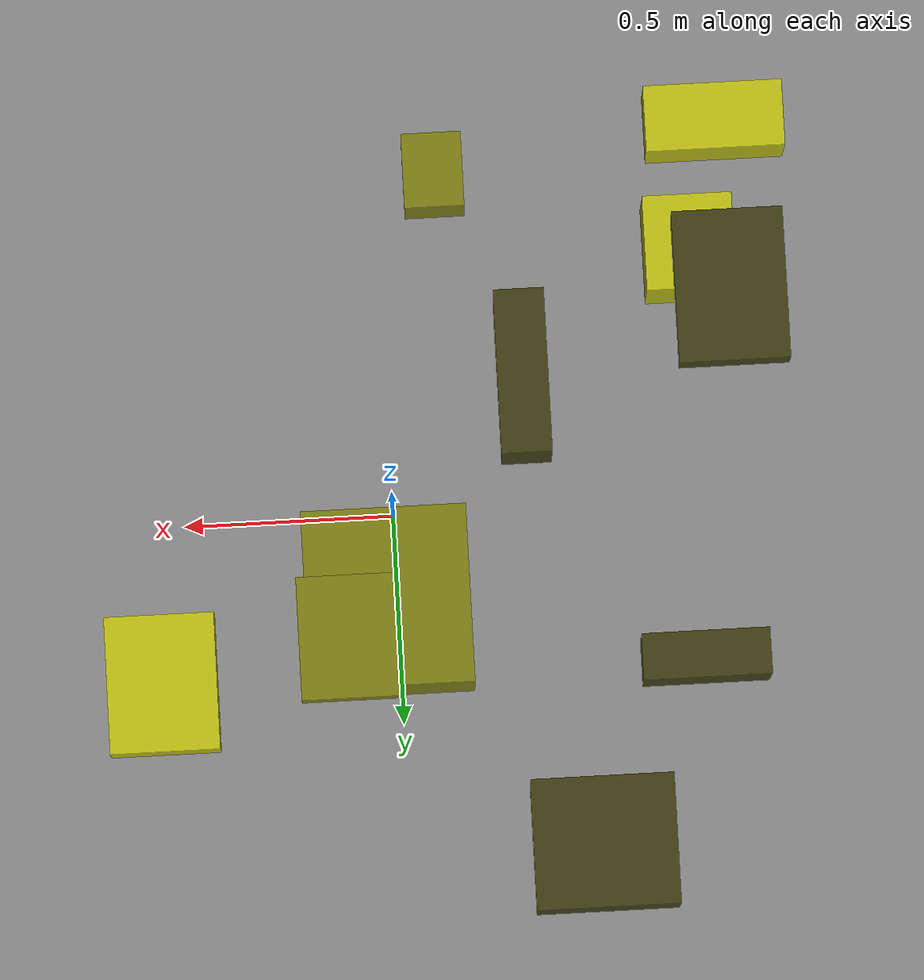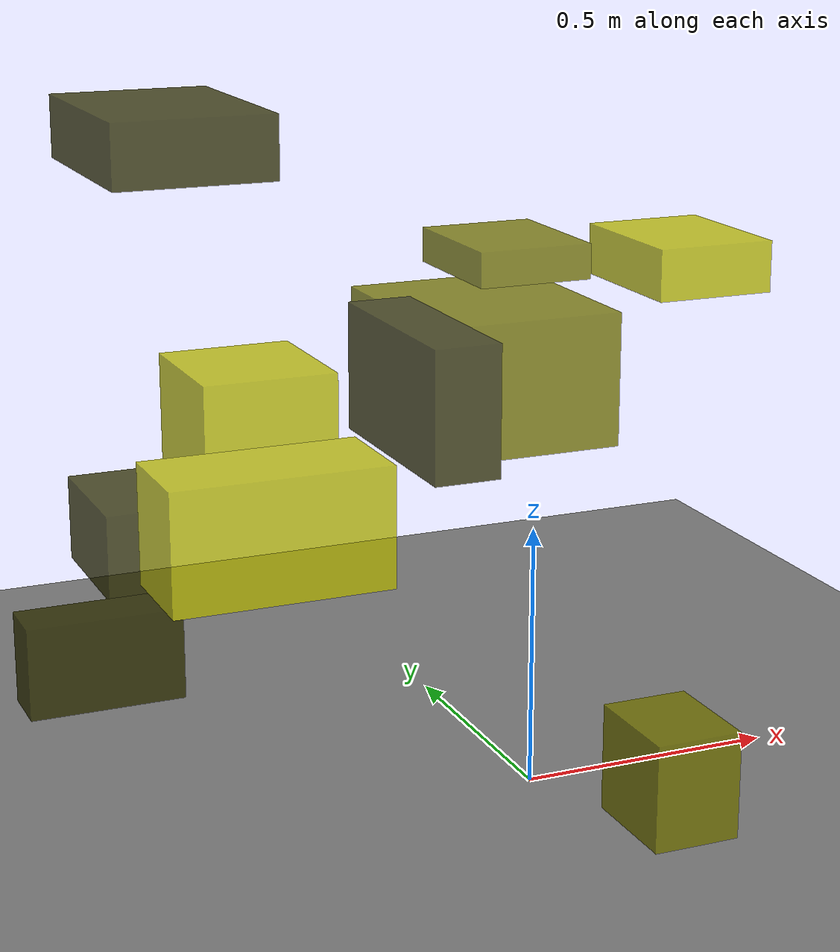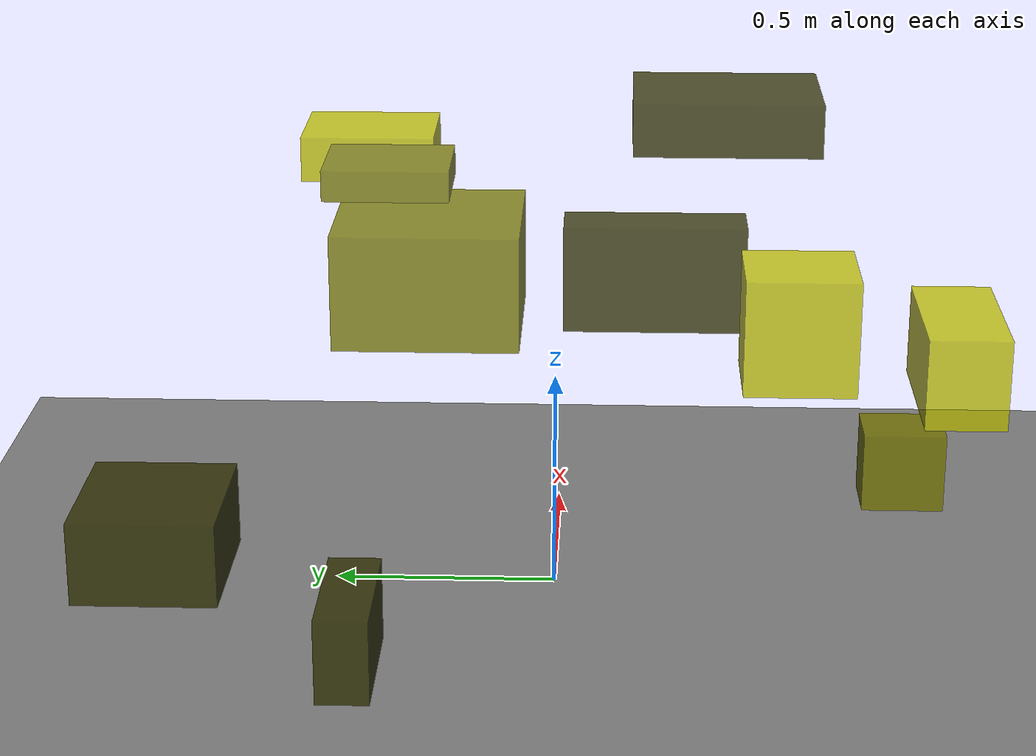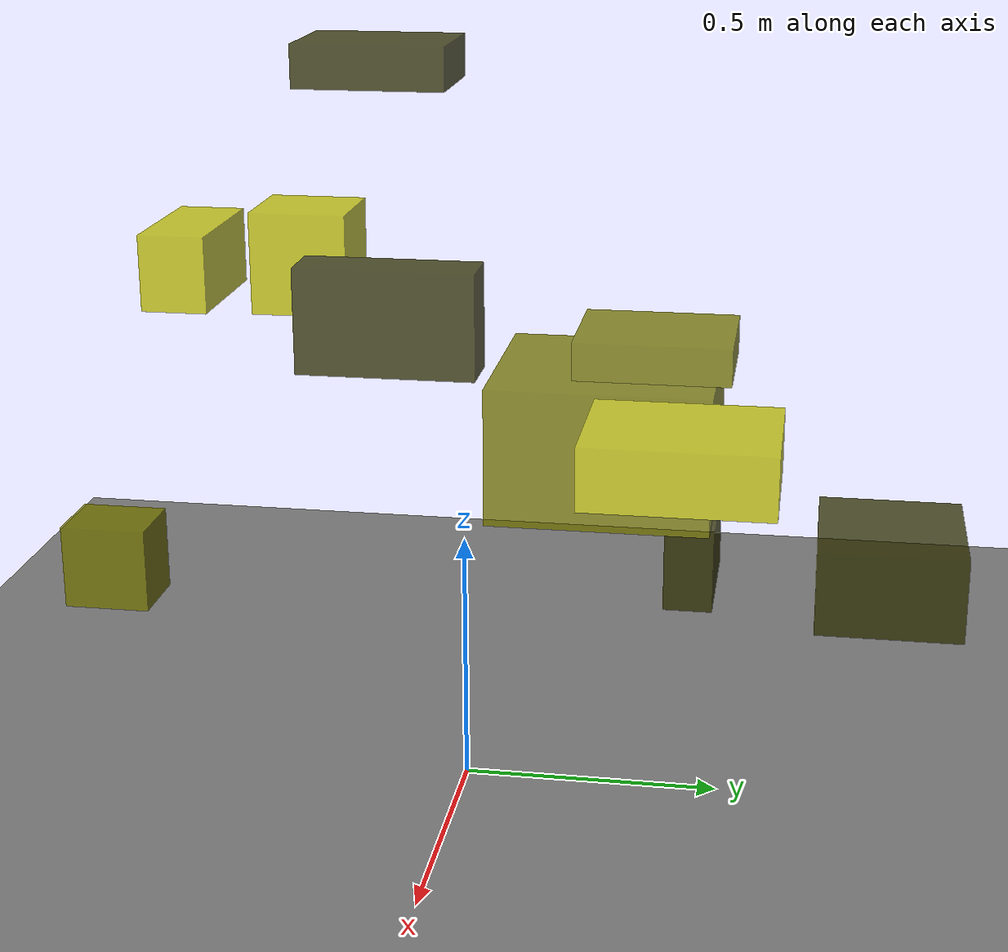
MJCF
<?xml version="1.0"?>
<mujoco model="obstacle_scene">
  <compiler angle="radian" coordinate="local"/>
  <option timestep="0.001" gravity="0 0 -9.81"/>

  <asset>
    <material name="obstacle_mat" rgba="0.8 0.8 0.0 0.8"/>
    <material name="ground_mat" rgba="0.5 0.5 0.5 1"/>
  </asset>

  <worldbody>
    <!-- Ground plane -->
    <geom name="ground" type="plane" size="3 3 0.1" material="ground_mat"/>

    <!-- Obstacles -->
    <body name="obstacle_0" pos="-0.778226 -0.327126 1.308308">
      <geom name="obs_0" type="box" size="0.123301 0.169553 0.048215" rgba="0.2 0.2 0.0 0.8"/>
    </body>
    <body name="obstacle_1" pos="-0.135227 -0.761909 0.362370">
      <geom name="obs_1" type="box" size="0.069997 0.087917 0.086476" rgba="0.5 0.5 0.0 0.8"/>
    </body>
    <body name="obstacle_2" pos="0.543241 0.454318 0.878854">
      <geom name="obs_2" type="box" size="0.124836 0.155808 0.052730" rgba="0.8 0.8 0.0 0.8"/>
    </body>
    <body name="obstacle_3" pos="-0.718969 0.397200 0.219603">
      <geom name="obs_3" type="box" size="0.150664 0.054791 0.090292" rgba="0.2 0.2 0.0 0.8"/>
    </body>
    <body name="obstacle_4" pos="0.022160 0.278762 0.743213">
      <geom name="obs_4" type="box" size="0.188660 0.203866 0.128564" rgba="0.5 0.5 0.0 0.8"/>
    </body>
    <body name="obstacle_5" pos="-0.705690 -0.481616 0.880235">
      <geom name="obs_5" type="box" size="0.101013 0.107955 0.114270" rgba="0.8 0.8 0.0 0.8"/>
    </body>
    <body name="obstacle_6" pos="-0.312134 -0.210668 0.850558">
      <geom name="obs_6" type="box" size="0.057150 0.187334 0.111662" rgba="0.2 0.2 0.0 0.8"/>
    </body>
    <body name="obstacle_7" pos="0.113498 0.374715 0.936234">
      <geom name="obs_7" type="box" size="0.114612 0.140032 0.034368" rgba="0.5 0.5 0.0 0.8"/>
    </body>
    <body name="obstacle_8" pos="-0.781193 -0.777078 0.843815">
      <geom name="obs_8" type="box" size="0.157945 0.075789 0.087582" rgba="0.8 0.8 0.0 0.8"/>
    </body>
    <body name="obstacle_9" pos="-0.454559 0.830608 0.307302">
      <geom name="obs_9" type="box" size="0.167635 0.153034 0.090999" rgba="0.2 0.2 0.0 0.8"/>
    </body>
  </worldbody>
</mujoco>
